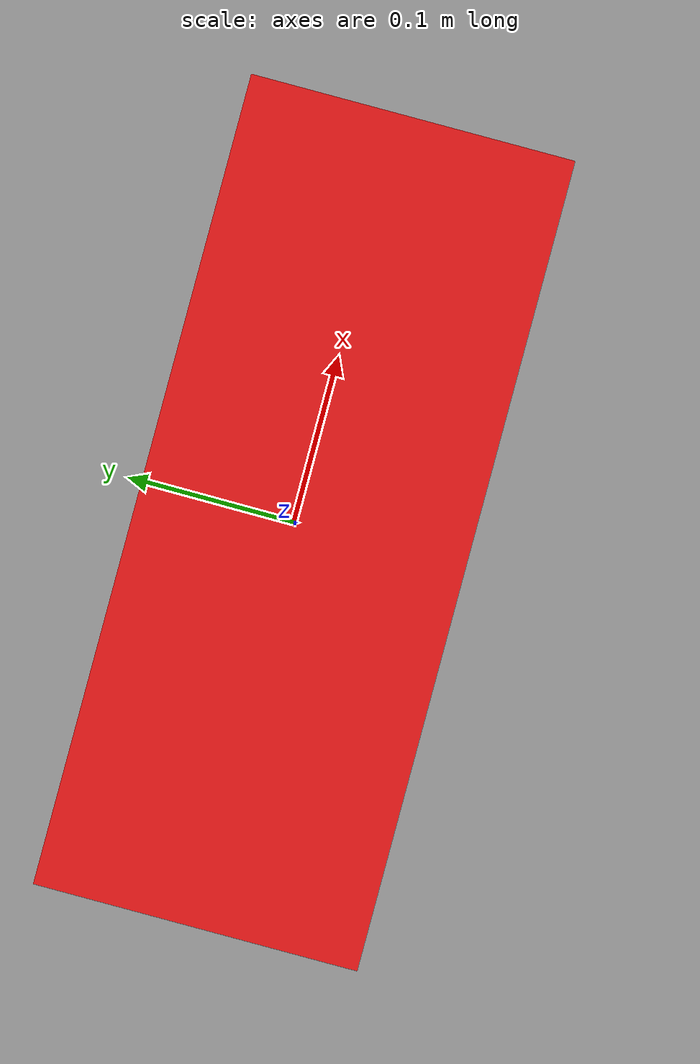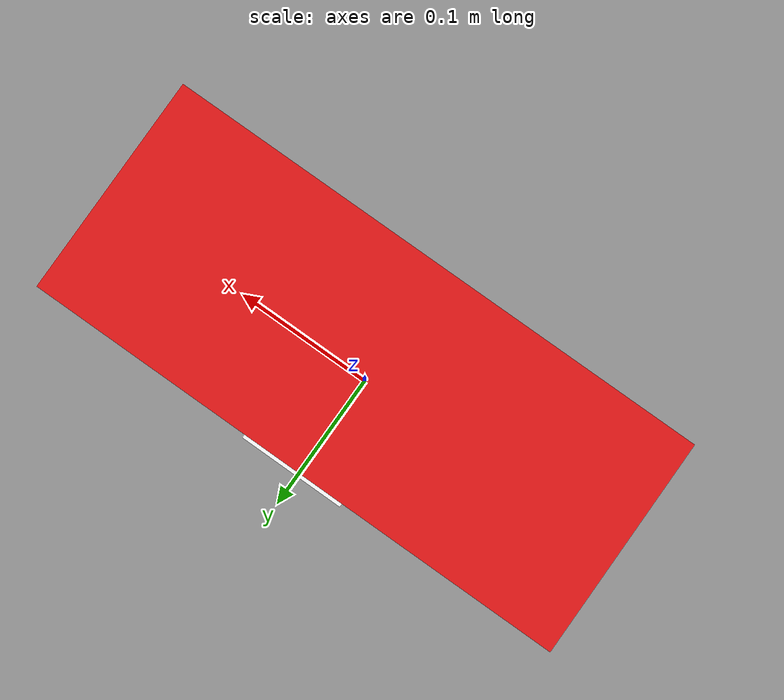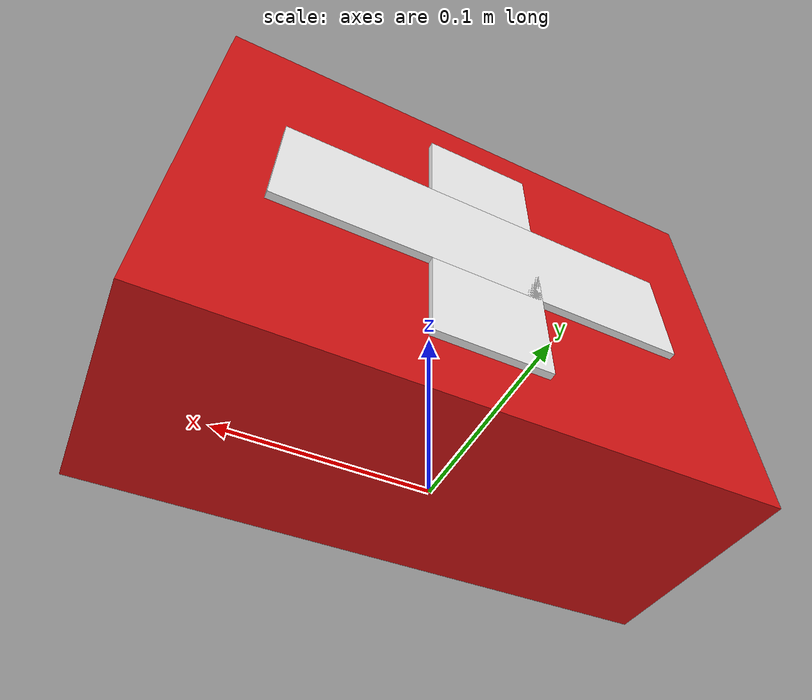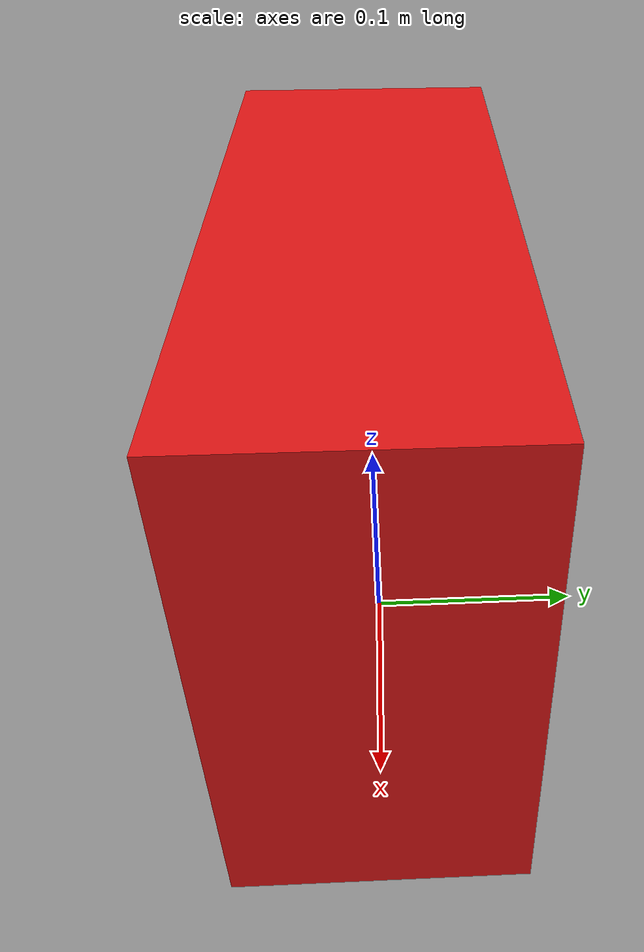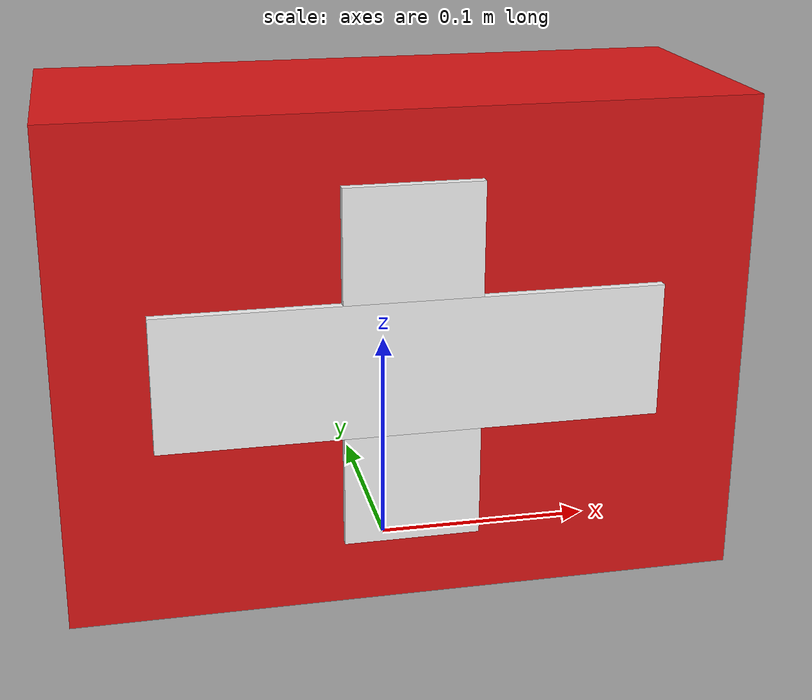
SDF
<?xml version="1.0"?>
<sdf version="1.9">
  <model name="first_aid_kit">
    <static>true</static>

    <!-- Label plugin at model level — applies to all visuals -->
    <plugin filename="gz-sim-label-system" name="gz::sim::systems::Label">
      <label>2</label>
    </plugin>

    <!-- ── Main box ──────────────────────────────────────────────────────── -->
    <link name="box">
      <pose>0 0 0.11 0 0 0</pose>

      <visual name="box_visual">
        <geometry>
          <box>
            <size>0.30 0.12 0.22</size>
          </box>
        </geometry>
        <material>
          <ambient>0.85 0.08 0.08 1</ambient>
          <diffuse>0.85 0.08 0.08 1</diffuse>
          <specular>0.3 0.1 0.1 1</specular>
        </material>
      </visual>

      <collision name="box_collision">
        <geometry>
          <box>
            <size>0.30 0.12 0.22</size>
          </box>
        </geometry>
      </collision>
    </link>

    <!-- ── White cross — horizontal bar (decal on front face, y=-0.06) ──── -->
    <link name="cross_h">
      <pose>0 -0.062 0.11 0 0 0</pose>

      <visual name="cross_h_visual">
        <geometry>
          <box>
            <size>0.22 0.004 0.06</size>
          </box>
        </geometry>
        <material>
          <ambient>0.95 0.95 0.95 1</ambient>
          <diffuse>0.95 0.95 0.95 1</diffuse>
        </material>
      </visual>
    </link>

    <!-- ── White cross — vertical bar ───────────────────────────────────── -->
    <link name="cross_v">
      <pose>0 -0.062 0.11 0 0 0</pose>

      <visual name="cross_v_visual">
        <geometry>
          <box>
            <size>0.06 0.004 0.16</size>
          </box>
        </geometry>
        <material>
          <ambient>0.95 0.95 0.95 1</ambient>
          <diffuse>0.95 0.95 0.95 1</diffuse>
        </material>
      </visual>
    </link>

    <!-- ── White cross — horizontal bar (decal on back face, y=+0.06) ───── -->
    <link name="cross_h_back">
      <pose>0 0.062 0.11 0 0 0</pose>

      <visual name="cross_h_back_visual">
        <geometry>
          <box>
            <size>0.22 0.004 0.06</size>
          </box>
        </geometry>
        <material>
          <ambient>0.95 0.95 0.95 1</ambient>
          <diffuse>0.95 0.95 0.95 1</diffuse>
        </material>
      </visual>
    </link>

    <!-- ── White cross — vertical bar (back face) ────────────────────────── -->
    <link name="cross_v_back">
      <pose>0 0.062 0.11 0 0 0</pose>

      <visual name="cross_v_back_visual">
        <geometry>
          <box>
            <size>0.06 0.004 0.16</size>
          </box>
        </geometry>
        <material>
          <ambient>0.95 0.95 0.95 1</ambient>
          <diffuse>0.95 0.95 0.95 1</diffuse>
        </material>
      </visual>
    </link>

  </model>
</sdf>
